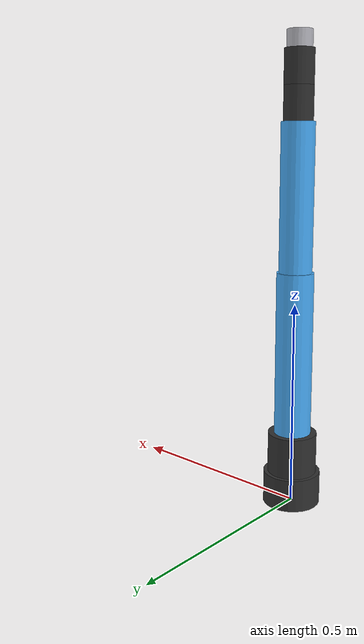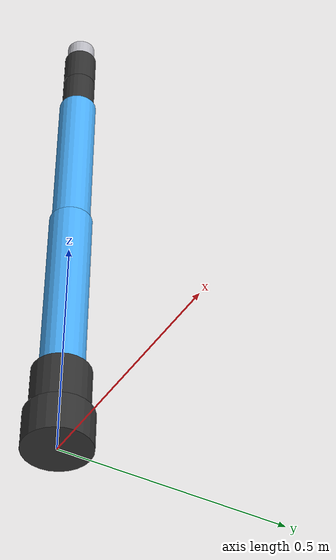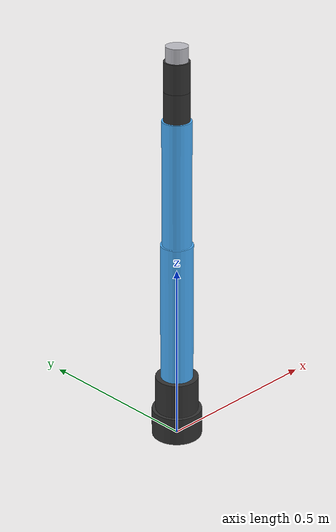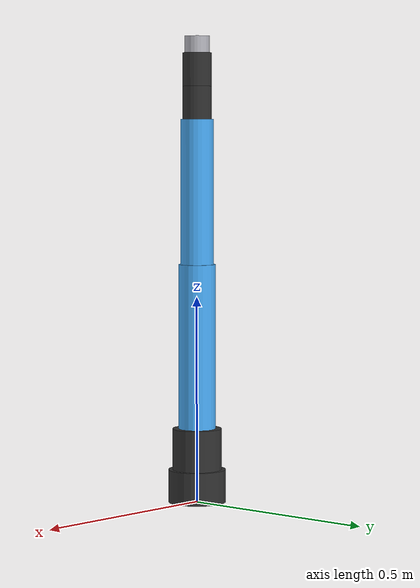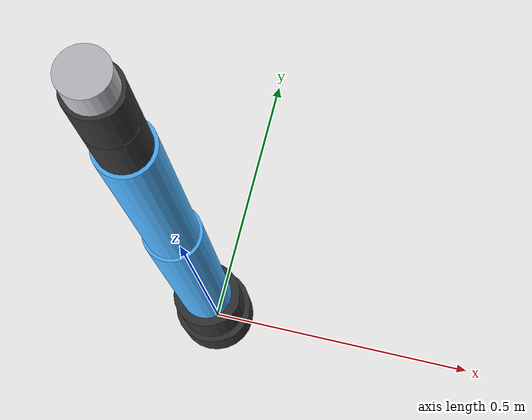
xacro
<?xml version="1.0"?>
<!-- A 6-DOF industrial-style arm (joint names follow the UR convention) -->
<robot name="arm6" xmlns:xacro="http://www.ros.org/wiki/xacro">
  <xacro:include filename="../../common/urdf/macros.xacro"/>
  <link name="base_link">
    <visual><origin xyz="0 0 0.04"/><geometry><cylinder radius="0.07" length="0.08"/></geometry><material name="dark_grey"/></visual>
    <collision><origin xyz="0 0 0.04"/><geometry><cylinder radius="0.07" length="0.08"/></geometry></collision>
    <xacro:cylinder_inertia m="4.0" r="0.07" h="0.08" xyz="0 0 0.04"/>
  </link>
  <joint name="shoulder_pan_joint" type="revolute">
    <parent link="base_link"/><child link="shoulder_link"/><origin xyz="0 0 0.08"/><axis xyz="0 0 1"/>
    <limit lower="-3.14" upper="3.14" effort="50" velocity="2.0"/>
  </joint>
  <link name="shoulder_link">
    <visual><origin xyz="0 0 0.05"/><geometry><cylinder radius="0.06" length="0.1"/></geometry><material name="dark_grey"/></visual>
    <collision><origin xyz="0 0 0.05"/><geometry><cylinder radius="0.06" length="0.1"/></geometry></collision>
    <xacro:cylinder_inertia m="3.0" r="0.06" h="0.1" xyz="0 0 0.05"/>
  </link>
  <joint name="shoulder_lift_joint" type="revolute">
    <parent link="shoulder_link"/><child link="upper_arm_link"/><origin xyz="0 0 0.10"/><axis xyz="0 1 0"/>
    <limit lower="-3.14" upper="3.14" effort="50" velocity="2.0"/>
  </joint>
  <link name="upper_arm_link">
    <visual><origin xyz="0 0 0.20"/><geometry><cylinder radius="0.045" length="0.4"/></geometry><material name="sky_blue"/></visual>
    <collision><origin xyz="0 0 0.20"/><geometry><cylinder radius="0.045" length="0.4"/></geometry></collision>
    <xacro:cylinder_inertia m="3.0" r="0.045" h="0.4" xyz="0 0 0.20"/>
  </link>
  <joint name="elbow_joint" type="revolute">
    <parent link="upper_arm_link"/><child link="forearm_link"/><origin xyz="0 0 0.40"/><axis xyz="0 1 0"/>
    <limit lower="-2.8" upper="2.8" effort="50" velocity="2.0"/>
  </joint>
  <link name="forearm_link">
    <visual><origin xyz="0 0 0.175"/><geometry><cylinder radius="0.04" length="0.35"/></geometry><material name="sky_blue"/></visual>
    <collision><origin xyz="0 0 0.175"/><geometry><cylinder radius="0.04" length="0.35"/></geometry></collision>
    <xacro:cylinder_inertia m="2.0" r="0.04" h="0.35" xyz="0 0 0.175"/>
  </link>
  <joint name="wrist_1_joint" type="revolute">
    <parent link="forearm_link"/><child link="wrist_1_link"/><origin xyz="0 0 0.35"/><axis xyz="0 1 0"/>
    <limit lower="-3.14" upper="3.14" effort="50" velocity="2.0"/>
  </joint>
  <link name="wrist_1_link">
    <visual><origin xyz="0 0 0.04"/><geometry><cylinder radius="0.035" length="0.08"/></geometry><material name="dark_grey"/></visual>
    <collision><origin xyz="0 0 0.04"/><geometry><cylinder radius="0.035" length="0.08"/></geometry></collision>
    <xacro:cylinder_inertia m="0.6" r="0.035" h="0.08" xyz="0 0 0.04"/>
  </link>
  <joint name="wrist_2_joint" type="revolute">
    <parent link="wrist_1_link"/><child link="wrist_2_link"/><origin xyz="0 0 0.08"/><axis xyz="0 0 1"/>
    <limit lower="-3.14" upper="3.14" effort="50" velocity="2.0"/>
  </joint>
  <link name="wrist_2_link">
    <visual><origin xyz="0 0 0.04"/><geometry><cylinder radius="0.035" length="0.08"/></geometry><material name="dark_grey"/></visual>
    <collision><origin xyz="0 0 0.04"/><geometry><cylinder radius="0.035" length="0.08"/></geometry></collision>
    <xacro:cylinder_inertia m="0.6" r="0.035" h="0.08" xyz="0 0 0.04"/>
  </link>
  <joint name="wrist_3_joint" type="revolute">
    <parent link="wrist_2_link"/><child link="wrist_3_link"/><origin xyz="0 0 0.08"/><axis xyz="0 1 0"/>
    <limit lower="-3.14" upper="3.14" effort="50" velocity="2.0"/>
  </joint>
  <link name="wrist_3_link">
    <visual><origin xyz="0 0 0.02"/><geometry><cylinder radius="0.03" length="0.04"/></geometry><material name="light_grey"/></visual>
    <collision><origin xyz="0 0 0.02"/><geometry><cylinder radius="0.03" length="0.04"/></geometry></collision>
    <xacro:cylinder_inertia m="0.3" r="0.03" h="0.04" xyz="0 0 0.02"/>
  </link>
  <joint name="tool0_joint" type="fixed">
    <parent link="wrist_3_link"/><child link="tool0"/><origin xyz="0 0 0.04"/>
  </joint>
  <link name="tool0"/>
</robot>

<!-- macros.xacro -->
<!-- Shared materials and inertia macros (solid box, cylinder along Z, sphere) -->
<robot xmlns:xacro="http://www.ros.org/wiki/xacro">
  <material name="orange"><color rgba="1.0 0.55 0.0 1.0"/></material>
  <material name="dark_grey"><color rgba="0.2 0.2 0.2 1.0"/></material>
  <material name="light_grey"><color rgba="0.75 0.75 0.78 1.0"/></material>
  <material name="sky_blue"><color rgba="0.3 0.7 1.0 1.0"/></material>
  <material name="green"><color rgba="0.2 0.75 0.35 1.0"/></material>
  <material name="red"><color rgba="0.9 0.2 0.2 1.0"/></material>
  <material name="white"><color rgba="0.95 0.95 0.95 1.0"/></material>
  <material name="prop_blue"><color rgba="0.3 0.6 1.0 0.6"/></material>

  <xacro:macro name="box_inertia" params="m x y z xyz:='0 0 0' rpy:='0 0 0'">
    <inertial>
      <origin xyz="${xyz}" rpy="${rpy}"/>
      <mass value="${m}"/>
      <inertia ixx="${m*(y*y+z*z)/12}" ixy="0" ixz="0" iyy="${m*(x*x+z*z)/12}" iyz="0" izz="${m*(x*x+y*y)/12}"/>
    </inertial>
  </xacro:macro>
  <xacro:macro name="cylinder_inertia" params="m r h xyz:='0 0 0' rpy:='0 0 0'">
    <inertial>
      <origin xyz="${xyz}" rpy="${rpy}"/>
      <mass value="${m}"/>
      <inertia ixx="${m*(3*r*r+h*h)/12}" ixy="0" ixz="0" iyy="${m*(3*r*r+h*h)/12}" iyz="0" izz="${m*r*r/2}"/>
    </inertial>
  </xacro:macro>
  <xacro:macro name="sphere_inertia" params="m r xyz:='0 0 0'">
    <inertial>
      <origin xyz="${xyz}"/>
      <mass value="${m}"/>
      <inertia ixx="${2*m*r*r/5}" ixy="0" ixz="0" iyy="${2*m*r*r/5}" iyz="0" izz="${2*m*r*r/5}"/>
    </inertial>
  </xacro:macro>
</robot>
